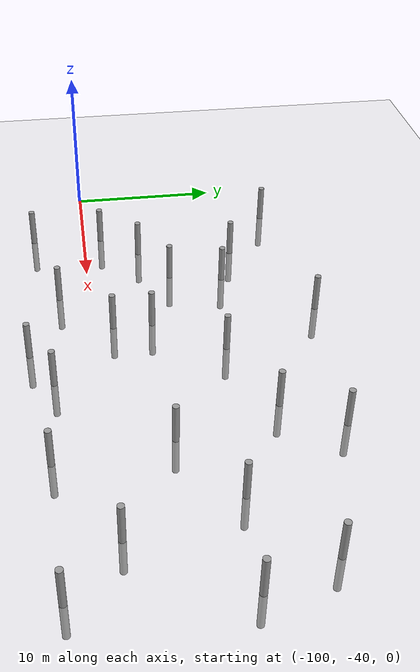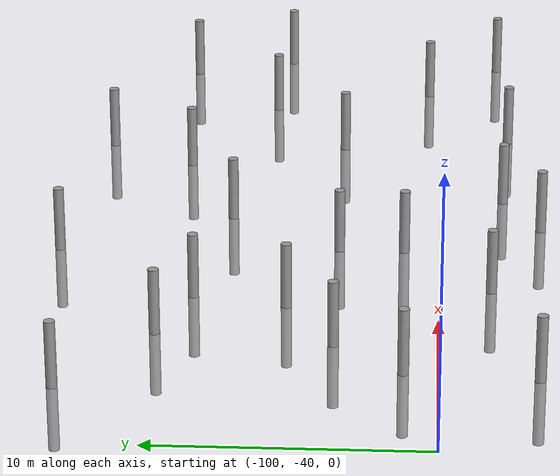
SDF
<sdf version="1.6">
 <world name="default">
  <model name="ground_plane">
   <static>1</static>
   <link name="link">
    <collision name="collision">
     <geometry><plane><normal>0 0 1</normal><size>100 100</size></plane></geometry>
     <surface><friction><ode><mu>100</mu><mu2>50</mu2></ode></friction></surface>
    </collision>
    <visual name="visual">
     <cast_shadows>0</cast_shadows>
     <geometry><plane><normal>0 0 1</normal><size>100 100</size></plane></geometry>
     <material>
      <script><uri>file://media/materials/scripts/gazebo.material</uri><name>Gazebo/Grey</name></script>
     </material>
    </visual>
   </link>
  </model>
  <model name="empty_pillars_7">
   <model name="empty_pillar_clone">
    <link name="link">
     <inertial>
      <mass>1</mass>
      <inertia><ixx>0.145833</ixx><ixy>0</ixy><ixz>0</ixz><iyy>0.145833</iyy><iyz>0</iyz><izz>0.125</izz></inertia>
     </inertial>
     <visual name="visual">
      <geometry><cylinder><radius>0.2</radius><length>5</length></cylinder></geometry>
      <material>
       <script><name>Gazebo/Grey</name><uri>file://media/materials/scripts/gazebo.material</uri></script>
       <shader type="vertex"><normal_map>__default__</normal_map></shader>
       <ambient>0.3 0.3 0.3 1</ambient>
       <diffuse>0.7 0.7 0.7 1</diffuse>
       <specular>0.01 0.01 0.01 1</specular>
       <emissive>0 0 0 1</emissive>
      </material>
     </visual>
     <collision name="collision">
      <geometry><cylinder><radius>0.05</radius><length>5</length></cylinder></geometry>
      <surface>
       <friction>
        <ode><mu>1</mu><mu2>1</mu2><fdir1>0 0 0</fdir1><slip1>0</slip1><slip2>0</slip2></ode>
        <torsional>
         <coefficient>1</coefficient>
         <patch_radius>0</patch_radius>
         <surface_radius>0</surface_radius>
         <use_patch_radius>1</use_patch_radius>
         <ode><slip>0</slip></ode>
        </torsional>
       </friction>
       <bounce><restitution_coefficient>0</restitution_coefficient><threshold>1e+06</threshold></bounce>
       <contact>
        <collide_without_contact>0</collide_without_contact>
        <collide_without_contact_bitmask>1</collide_without_contact_bitmask>
        <collide_bitmask>1</collide_bitmask>
        <ode>
         <soft_cfm>0</soft_cfm>
         <soft_erp>0.2</soft_erp>
         <kp>1e+13</kp>
         <kd>1</kd>
         <max_vel>0.01</max_vel>
         <min_depth>0</min_depth>
        </ode>
        <bullet>
         <split_impulse>1</split_impulse>
         <split_impulse_penetration_threshold>-0.01</split_impulse_penetration_threshold>
         <soft_cfm>0</soft_cfm>
         <soft_erp>0.2</soft_erp>
         <kp>1e+13</kp>
         <kd>1</kd>
        </bullet>
       </contact>
      </surface>
     </collision>
    </link>
    <static>0</static>
    <pose>1.47843 -4.49529 0 0 -0 0</pose>
   </model>
   <model name="empty_pillar_clone_0">
    <link name="link">
     <inertial>
      <mass>1</mass>
      <inertia><ixx>0.145833</ixx><ixy>0</ixy><ixz>0</ixz><iyy>0.145833</iyy><iyz>0</iyz><izz>0.125</izz></inertia>
     </inertial>
     <visual name="visual">
      <geometry><cylinder><radius>0.2</radius><length>5</length></cylinder></geometry>
      <material>
       <script><name>Gazebo/Grey</name><uri>file://media/materials/scripts/gazebo.material</uri></script>
       <shader type="vertex"><normal_map>__default__</normal_map></shader>
       <ambient>0.3 0.3 0.3 1</ambient>
       <diffuse>0.7 0.7 0.7 1</diffuse>
       <specular>0.01 0.01 0.01 1</specular>
       <emissive>0 0 0 1</emissive>
      </material>
     </visual>
     <collision name="collision">
      <geometry><cylinder><radius>0.05</radius><length>5</length></cylinder></geometry>
      <surface>
       <friction>
        <ode><mu>1</mu><mu2>1</mu2><fdir1>0 0 0</fdir1><slip1>0</slip1><slip2>0</slip2></ode>
        <torsional>
         <coefficient>1</coefficient>
         <patch_radius>0</patch_radius>
         <surface_radius>0</surface_radius>
         <use_patch_radius>1</use_patch_radius>
         <ode><slip>0</slip></ode>
        </torsional>
       </friction>
       <bounce><restitution_coefficient>0</restitution_coefficient><threshold>1e+06</threshold></bounce>
       <contact>
        <collide_without_contact>0</collide_without_contact>
        <collide_without_contact_bitmask>1</collide_without_contact_bitmask>
        <collide_bitmask>1</collide_bitmask>
        <ode>
         <soft_cfm>0</soft_cfm>
         <soft_erp>0.2</soft_erp>
         <kp>1e+13</kp>
         <kd>1</kd>
         <max_vel>0.01</max_vel>
         <min_depth>0</min_depth>
        </ode>
        <bullet>
         <split_impulse>1</split_impulse>
         <split_impulse_penetration_threshold>-0.01</split_impulse_penetration_threshold>
         <soft_cfm>0</soft_cfm>
         <soft_erp>0.2</soft_erp>
         <kp>1e+13</kp>
         <kd>1</kd>
        </bullet>
       </contact>
      </surface>
     </collision>
    </link>
    <static>0</static>
    <pose>10.3453 -7.35986 0 0 -0 0</pose>
   </model>
   <model name="empty_pillar_clone_11">
    <link name="link">
     <inertial>
      <mass>1</mass>
      <inertia><ixx>0.145833</ixx><ixy>0</ixy><ixz>0</ixz><iyy>0.145833</iyy><iyz>0</iyz><izz>0.125</izz></inertia>
     </inertial>
     <visual name="visual">
      <geometry><cylinder><radius>0.2</radius><length>5</length></cylinder></geometry>
      <material>
       <script><name>Gazebo/Grey</name><uri>file://media/materials/scripts/gazebo.material</uri></script>
       <shader type="vertex"><normal_map>__default__</normal_map></shader>
       <ambient>0.3 0.3 0.3 1</ambient>
       <diffuse>0.7 0.7 0.7 1</diffuse>
       <specular>0.01 0.01 0.01 1</specular>
       <emissive>0 0 0 1</emissive>
      </material>
     </visual>
     <collision name="collision">
      <geometry><cylinder><radius>0.05</radius><length>5</length></cylinder></geometry>
      <surface>
       <friction>
        <ode><mu>1</mu><mu2>1</mu2><fdir1>0 0 0</fdir1><slip1>0</slip1><slip2>0</slip2></ode>
        <torsional>
         <coefficient>1</coefficient>
         <patch_radius>0</patch_radius>
         <surface_radius>0</surface_radius>
         <use_patch_radius>1</use_patch_radius>
         <ode><slip>0</slip></ode>
        </torsional>
       </friction>
       <bounce><restitution_coefficient>0</restitution_coefficient><threshold>1e+06</threshold></bounce>
       <contact>
        <collide_without_contact>0</collide_without_contact>
        <collide_without_contact_bitmask>1</collide_without_contact_bitmask>
        <collide_bitmask>1</collide_bitmask>
        <ode>
         <soft_cfm>0</soft_cfm>
         <soft_erp>0.2</soft_erp>
         <kp>1e+13</kp>
         <kd>1</kd>
         <max_vel>0.01</max_vel>
         <min_depth>0</min_depth>
        </ode>
        <bullet>
         <split_impulse>1</split_impulse>
         <split_impulse_penetration_threshold>-0.01</split_impulse_penetration_threshold>
         <soft_cfm>0</soft_cfm>
         <soft_erp>0.2</soft_erp>
         <kp>1e+13</kp>
         <kd>1</kd>
        </bullet>
       </contact>
      </surface>
     </collision>
    </link>
    <static>0</static>
    <pose>7.98536 -17.8403 0 0 -0 0</pose>
   </model>
   <model name="empty_pillar_clone_12">
    <link name="link">
     <inertial>
      <mass>1</mass>
      <inertia><ixx>0.145833</ixx><ixy>0</ixy><ixz>0</ixz><iyy>0.145833</iyy><iyz>0</iyz><izz>0.125</izz></inertia>
     </inertial>
     <visual name="visual">
      <geometry><cylinder><radius>0.2</radius><length>5</length></cylinder></geometry>
      <material>
       <script><name>Gazebo/Grey</name><uri>file://media/materials/scripts/gazebo.material</uri></script>
       <shader type="vertex"><normal_map>__default__</normal_map></shader>
       <ambient>0.3 0.3 0.3 1</ambient>
       <diffuse>0.7 0.7 0.7 1</diffuse>
       <specular>0.01 0.01 0.01 1</specular>
       <emissive>0 0 0 1</emissive>
      </material>
     </visual>
     <collision name="collision">
      <geometry><cylinder><radius>0.05</radius><length>5</length></cylinder></geometry>
      <surface>
       <friction>
        <ode><mu>1</mu><mu2>1</mu2><fdir1>0 0 0</fdir1><slip1>0</slip1><slip2>0</slip2></ode>
        <torsional>
         <coefficient>1</coefficient>
         <patch_radius>0</patch_radius>
         <surface_radius>0</surface_radius>
         <use_patch_radius>1</use_patch_radius>
         <ode><slip>0</slip></ode>
        </torsional>
       </friction>
       <bounce><restitution_coefficient>0</restitution_coefficient><threshold>1e+06</threshold></bounce>
       <contact>
        <collide_without_contact>0</collide_without_contact>
        <collide_without_contact_bitmask>1</collide_without_contact_bitmask>
        <collide_bitmask>1</collide_bitmask>
        <ode>
         <soft_cfm>0</soft_cfm>
         <soft_erp>0.2</soft_erp>
         <kp>1e+13</kp>
         <kd>1</kd>
         <max_vel>0.01</max_vel>
         <min_depth>0</min_depth>
        </ode>
        <bullet>
         <split_impulse>1</split_impulse>
         <split_impulse_penetration_threshold>-0.01</split_impulse_penetration_threshold>
         <soft_cfm>0</soft_cfm>
         <soft_erp>0.2</soft_erp>
         <kp>1e+13</kp>
         <kd>1</kd>
        </bullet>
       </contact>
      </surface>
     </collision>
    </link>
    <static>0</static>
    <pose>-4.01464 -20.8403 0 0 -0 0</pose>
   </model>
   <model name="empty_pillar_clone_13">
    <link name="link">
     <inertial>
      <mass>1</mass>
      <inertia><ixx>0.145833</ixx><ixy>0</ixy><ixz>0</ixz><iyy>0.145833</iyy><iyz>0</iyz><izz>0.125</izz></inertia>
     </inertial>
     <visual name="visual">
      <geometry><cylinder><radius>0.2</radius><length>5</length></cylinder></geometry>
      <material>
       <script><name>Gazebo/Grey</name><uri>file://media/materials/scripts/gazebo.material</uri></script>
       <shader type="vertex"><normal_map>__default__</normal_map></shader>
       <ambient>0.3 0.3 0.3 1</ambient>
       <diffuse>0.7 0.7 0.7 1</diffuse>
       <specular>0.01 0.01 0.01 1</specular>
       <emissive>0 0 0 1</emissive>
      </material>
     </visual>
     <collision name="collision">
      <geometry><cylinder><radius>0.05</radius><length>5</length></cylinder></geometry>
      <surface>
       <friction>
        <ode><mu>1</mu><mu2>1</mu2><fdir1>0 0 0</fdir1><slip1>0</slip1><slip2>0</slip2></ode>
        <torsional>
         <coefficient>1</coefficient>
         <patch_radius>0</patch_radius>
         <surface_radius>0</surface_radius>
         <use_patch_radius>1</use_patch_radius>
         <ode><slip>0</slip></ode>
        </torsional>
       </friction>
       <bounce><restitution_coefficient>0</restitution_coefficient><threshold>1e+06</threshold></bounce>
       <contact>
        <collide_without_contact>0</collide_without_contact>
        <collide_without_contact_bitmask>1</collide_without_contact_bitmask>
        <collide_bitmask>1</collide_bitmask>
        <ode>
         <soft_cfm>0</soft_cfm>
         <soft_erp>0.2</soft_erp>
         <kp>1e+13</kp>
         <kd>1</kd>
         <max_vel>0.01</max_vel>
         <min_depth>0</min_depth>
        </ode>
        <bullet>
         <split_impulse>1</split_impulse>
         <split_impulse_penetration_threshold>-0.01</split_impulse_penetration_threshold>
         <soft_cfm>0</soft_cfm>
         <soft_erp>0.2</soft_erp>
         <kp>1e+13</kp>
         <kd>1</kd>
        </bullet>
       </contact>
      </surface>
     </collision>
    </link>
    <static>0</static>
    <pose>-9.01464 -14.4259 0 0 -0 0</pose>
   </model>
   <model name="empty_pillar_clone_15">
    <link name="link">
     <inertial>
      <mass>1</mass>
      <inertia><ixx>0.145833</ixx><ixy>0</ixy><ixz>0</ixz><iyy>0.145833</iyy><iyz>0</iyz><izz>0.125</izz></inertia>
     </inertial>
     <visual name="visual">
      <geometry><cylinder><radius>0.2</radius><length>5</length></cylinder></geometry>
      <material>
       <script><name>Gazebo/Grey</name><uri>file://media/materials/scripts/gazebo.material</uri></script>
       <shader type="vertex"><normal_map>__default__</normal_map></shader>
       <ambient>0.3 0.3 0.3 1</ambient>
       <diffuse>0.7 0.7 0.7 1</diffuse>
       <specular>0.01 0.01 0.01 1</specular>
       <emissive>0 0 0 1</emissive>
      </material>
     </visual>
     <collision name="collision">
      <geometry><cylinder><radius>0.05</radius><length>5</length></cylinder></geometry>
      <surface>
       <friction>
        <ode><mu>1</mu><mu2>1</mu2><fdir1>0 0 0</fdir1><slip1>0</slip1><slip2>0</slip2></ode>
        <torsional>
         <coefficient>1</coefficient>
         <patch_radius>0</patch_radius>
         <surface_radius>0</surface_radius>
         <use_patch_radius>1</use_patch_radius>
         <ode><slip>0</slip></ode>
        </torsional>
       </friction>
       <bounce><restitution_coefficient>0</restitution_coefficient><threshold>1e+06</threshold></bounce>
       <contact>
        <collide_without_contact>0</collide_without_contact>
        <collide_without_contact_bitmask>1</collide_without_contact_bitmask>
        <collide_bitmask>1</collide_bitmask>
        <ode>
         <soft_cfm>0</soft_cfm>
         <soft_erp>0.2</soft_erp>
         <kp>1e+13</kp>
         <kd>1</kd>
         <max_vel>0.01</max_vel>
         <min_depth>0</min_depth>
        </ode>
        <bullet>
         <split_impulse>1</split_impulse>
         <split_impulse_penetration_threshold>-0.01</split_impulse_penetration_threshold>
         <soft_cfm>0</soft_cfm>
         <soft_erp>0.2</soft_erp>
         <kp>1e+13</kp>
         <kd>1</kd>
        </bullet>
       </contact>
      </surface>
     </collision>
    </link>
    <static>0</static>
    <pose>-9.37193 -3.58732 0 0 -0 0</pose>
   </model>
   <model name="empty_pillar_clone_3">
    <link name="link">
     <inertial>
      <mass>1</mass>
      <inertia><ixx>0.145833</ixx><ixy>0</ixy><ixz>0</ixz><iyy>0.145833</iyy><iyz>0</iyz><izz>0.125</izz></inertia>
     </inertial>
     <visual name="visual">
      <geometry><cylinder><radius>0.2</radius><length>5</length></cylinder></geometry>
      <material>
       <script><name>Gazebo/Grey</name><uri>file://media/materials/scripts/gazebo.material</uri></script>
       <shader type="vertex"><normal_map>__default__</normal_map></shader>
       <ambient>0.3 0.3 0.3 1</ambient>
       <diffuse>0.7 0.7 0.7 1</diffuse>
       <specular>0.01 0.01 0.01 1</specular>
       <emissive>0 0 0 1</emissive>
      </material>
     </visual>
     <collision name="collision">
      <geometry><cylinder><radius>0.05</radius><length>5</length></cylinder></geometry>
      <surface>
       <friction>
        <ode><mu>1</mu><mu2>1</mu2><fdir1>0 0 0</fdir1><slip1>0</slip1><slip2>0</slip2></ode>
        <torsional>
         <coefficient>1</coefficient>
         <patch_radius>0</patch_radius>
         <surface_radius>0</surface_radius>
         <use_patch_radius>1</use_patch_radius>
         <ode><slip>0</slip></ode>
        </torsional>
       </friction>
       <bounce><restitution_coefficient>0</restitution_coefficient><threshold>1e+06</threshold></bounce>
       <contact>
        <collide_without_contact>0</collide_without_contact>
        <collide_without_contact_bitmask>1</collide_without_contact_bitmask>
        <collide_bitmask>1</collide_bitmask>
        <ode>
         <soft_cfm>0</soft_cfm>
         <soft_erp>0.2</soft_erp>
         <kp>1e+13</kp>
         <kd>1</kd>
         <max_vel>0.01</max_vel>
         <min_depth>0</min_depth>
        </ode>
        <bullet>
         <split_impulse>1</split_impulse>
         <split_impulse_penetration_threshold>-0.01</split_impulse_penetration_threshold>
         <soft_cfm>0</soft_cfm>
         <soft_erp>0.2</soft_erp>
         <kp>1e+13</kp>
         <kd>1</kd>
        </bullet>
       </contact>
      </surface>
     </collision>
    </link>
    <static>0</static>
    <pose>5.99316 -11.2211 0 0 -0 0</pose>
   </model>
   <model name="empty_pillar_clone_35">
    <link name="link">
     <inertial>
      <mass>1</mass>
      <inertia><ixx>0.145833</ixx><ixy>0</ixy><ixz>0</ixz><iyy>0.145833</iyy><iyz>0</iyz><izz>0.125</izz></inertia>
     </inertial>
     <visual name="visual">
      <geometry><cylinder><radius>0.2</radius><length>5</length></cylinder></geometry>
      <material>
       <script><name>Gazebo/Grey</name><uri>file://media/materials/scripts/gazebo.material</uri></script>
       <shader type="vertex"><normal_map>__default__</normal_map></shader>
       <ambient>0.3 0.3 0.3 1</ambient>
       <diffuse>0.7 0.7 0.7 1</diffuse>
       <specular>0.01 0.01 0.01 1</specular>
       <emissive>0 0 0 1</emissive>
      </material>
     </visual>
     <collision name="collision">
      <geometry><cylinder><radius>0.05</radius><length>5</length></cylinder></geometry>
      <surface>
       <friction>
        <ode><mu>1</mu><mu2>1</mu2><fdir1>0 0 0</fdir1><slip1>0</slip1><slip2>0</slip2></ode>
        <torsional>
         <coefficient>1</coefficient>
         <patch_radius>0</patch_radius>
         <surface_radius>0</surface_radius>
         <use_patch_radius>1</use_patch_radius>
         <ode><slip>0</slip></ode>
        </torsional>
       </friction>
       <bounce><restitution_coefficient>0</restitution_coefficient><threshold>1e+06</threshold></bounce>
       <contact>
        <collide_without_contact>0</collide_without_contact>
        <collide_without_contact_bitmask>1</collide_without_contact_bitmask>
        <collide_bitmask>1</collide_bitmask>
        <ode>
         <soft_cfm>0</soft_cfm>
         <soft_erp>0.2</soft_erp>
         <kp>1e+13</kp>
         <kd>1</kd>
         <max_vel>0.01</max_vel>
         <min_depth>0</min_depth>
        </ode>
        <bullet>
         <split_impulse>1</split_impulse>
         <split_impulse_penetration_threshold>-0.01</split_impulse_penetration_threshold>
         <soft_cfm>0</soft_cfm>
         <soft_erp>0.2</soft_erp>
         <kp>1e+13</kp>
         <kd>1</kd>
        </bullet>
       </contact>
      </surface>
     </collision>
    </link>
    <static>0</static>
    <pose>-19.4431 -17.0281 0 0 -0 0</pose>
   </model>
   <model name="empty_pillar_clone_36">
    <link name="link">
     <inertial>
      <mass>1</mass>
      <inertia><ixx>0.145833</ixx><ixy>0</ixy><ixz>0</ixz><iyy>0.145833</iyy><iyz>0</iyz><izz>0.125</izz></inertia>
     </inertial>
     <visual name="visual">
      <geometry><cylinder><radius>0.2</radius><length>5</length></cylinder></geometry>
      <material>
       <script><name>Gazebo/Grey</name><uri>file://media/materials/scripts/gazebo.material</uri></script>
       <shader type="vertex"><normal_map>__default__</normal_map></shader>
       <ambient>0.3 0.3 0.3 1</ambient>
       <diffuse>0.7 0.7 0.7 1</diffuse>
       <specular>0.01 0.01 0.01 1</specular>
       <emissive>0 0 0 1</emissive>
      </material>
     </visual>
     <collision name="collision">
      <geometry><cylinder><radius>0.05</radius><length>5</length></cylinder></geometry>
      <surface>
       <friction>
        <ode><mu>1</mu><mu2>1</mu2><fdir1>0 0 0</fdir1><slip1>0</slip1><slip2>0</slip2></ode>
        <torsional>
         <coefficient>1</coefficient>
         <patch_radius>0</patch_radius>
         <surface_radius>0</surface_radius>
         <use_patch_radius>1</use_patch_radius>
         <ode><slip>0</slip></ode>
        </torsional>
       </friction>
       <bounce><restitution_coefficient>0</restitution_coefficient><threshold>1e+06</threshold></bounce>
       <contact>
        <collide_without_contact>0</collide_without_contact>
        <collide_without_contact_bitmask>1</collide_without_contact_bitmask>
        <collide_bitmask>1</collide_bitmask>
        <ode>
         <soft_cfm>0</soft_cfm>
         <soft_erp>0.2</soft_erp>
         <kp>1e+13</kp>
         <kd>1</kd>
         <max_vel>0.01</max_vel>
         <min_depth>0</min_depth>
        </ode>
        <bullet>
         <split_impulse>1</split_impulse>
         <split_impulse_penetration_threshold>-0.01</split_impulse_penetration_threshold>
         <soft_cfm>0</soft_cfm>
         <soft_erp>0.2</soft_erp>
         <kp>1e+13</kp>
         <kd>1</kd>
        </bullet>
       </contact>
      </surface>
     </collision>
    </link>
    <static>0</static>
    <pose>-21.0146 -4.84034 0 0 -0 0</pose>
   </model>
   <model name="empty_pillar_clone_37">
    <link name="link">
     <inertial>
      <mass>1</mass>
      <inertia><ixx>0.145833</ixx><ixy>0</ixy><ixz>0</ixz><iyy>0.145833</iyy><iyz>0</iyz><izz>0.125</izz></inertia>
     </inertial>
     <visual name="visual">
      <geometry><cylinder><radius>0.2</radius><length>5</length></cylinder></geometry>
      <material>
       <script><name>Gazebo/Grey</name><uri>file://media/materials/scripts/gazebo.material</uri></script>
       <shader type="vertex"><normal_map>__default__</normal_map></shader>
       <ambient>0.3 0.3 0.3 1</ambient>
       <diffuse>0.7 0.7 0.7 1</diffuse>
       <specular>0.01 0.01 0.01 1</specular>
       <emissive>0 0 0 1</emissive>
      </material>
     </visual>
     <collision name="collision">
      <geometry><cylinder><radius>0.05</radius><length>5</length></cylinder></geometry>
      <surface>
       <friction>
        <ode><mu>1</mu><mu2>1</mu2><fdir1>0 0 0</fdir1><slip1>0</slip1><slip2>0</slip2></ode>
        <torsional>
         <coefficient>1</coefficient>
         <patch_radius>0</patch_radius>
         <surface_radius>0</surface_radius>
         <use_patch_radius>1</use_patch_radius>
         <ode><slip>0</slip></ode>
        </torsional>
       </friction>
       <bounce><restitution_coefficient>0</restitution_coefficient><threshold>1e+06</threshold></bounce>
       <contact>
        <collide_without_contact>0</collide_without_contact>
        <collide_without_contact_bitmask>1</collide_without_contact_bitmask>
        <collide_bitmask>1</collide_bitmask>
        <ode>
         <soft_cfm>0</soft_cfm>
         <soft_erp>0.2</soft_erp>
         <kp>1e+13</kp>
         <kd>1</kd>
         <max_vel>0.01</max_vel>
         <min_depth>0</min_depth>
        </ode>
        <bullet>
         <split_impulse>1</split_impulse>
         <split_impulse_penetration_threshold>-0.01</split_impulse_penetration_threshold>
         <soft_cfm>0</soft_cfm>
         <soft_erp>0.2</soft_erp>
         <kp>1e+13</kp>
         <kd>1</kd>
        </bullet>
       </contact>
      </surface>
     </collision>
    </link>
    <static>0</static>
    <pose>-16.6035 -7.98282 0 0 -0 0</pose>
   </model>
   <model name="empty_pillar_clone_39">
    <link name="link">
     <inertial>
      <mass>1</mass>
      <inertia><ixx>0.145833</ixx><ixy>0</ixy><ixz>0</ixz><iyy>0.145833</iyy><iyz>0</iyz><izz>0.125</izz></inertia>
     </inertial>
     <visual name="visual">
      <geometry><cylinder><radius>0.2</radius><length>5</length></cylinder></geometry>
      <material>
       <script><name>Gazebo/Grey</name><uri>file://media/materials/scripts/gazebo.material</uri></script>
       <shader type="vertex"><normal_map>__default__</normal_map></shader>
       <ambient>0.3 0.3 0.3 1</ambient>
       <diffuse>0.7 0.7 0.7 1</diffuse>
       <specular>0.01 0.01 0.01 1</specular>
       <emissive>0 0 0 1</emissive>
      </material>
     </visual>
     <collision name="collision">
      <geometry><cylinder><radius>0.05</radius><length>5</length></cylinder></geometry>
      <surface>
       <friction>
        <ode><mu>1</mu><mu2>1</mu2><fdir1>0 0 0</fdir1><slip1>0</slip1><slip2>0</slip2></ode>
        <torsional>
         <coefficient>1</coefficient>
         <patch_radius>0</patch_radius>
         <surface_radius>0</surface_radius>
         <use_patch_radius>1</use_patch_radius>
         <ode><slip>0</slip></ode>
        </torsional>
       </friction>
       <bounce><restitution_coefficient>0</restitution_coefficient><threshold>1e+06</threshold></bounce>
       <contact>
        <collide_without_contact>0</collide_without_contact>
        <collide_without_contact_bitmask>1</collide_without_contact_bitmask>
        <collide_bitmask>1</collide_bitmask>
        <ode>
         <soft_cfm>0</soft_cfm>
         <soft_erp>0.2</soft_erp>
         <kp>1e+13</kp>
         <kd>1</kd>
         <max_vel>0.01</max_vel>
         <min_depth>0</min_depth>
        </ode>
        <bullet>
         <split_impulse>1</split_impulse>
         <split_impulse_penetration_threshold>-0.01</split_impulse_penetration_threshold>
         <soft_cfm>0</soft_cfm>
         <soft_erp>0.2</soft_erp>
         <kp>1e+13</kp>
         <kd>1</kd>
        </bullet>
       </contact>
      </surface>
     </collision>
    </link>
    <static>0</static>
    <pose>-13.4361 -9.12638 0 0 -0 0</pose>
   </model>
   <model name="empty_pillar_clone_4">
    <link name="link">
     <inertial>
      <mass>1</mass>
      <inertia><ixx>0.145833</ixx><ixy>0</ixy><ixz>0</ixz><iyy>0.145833</iyy><iyz>0</iyz><izz>0.125</izz></inertia>
     </inertial>
     <visual name="visual">
      <geometry><cylinder><radius>0.2</radius><length>5</length></cylinder></geometry>
      <material>
       <script><name>Gazebo/Grey</name><uri>file://media/materials/scripts/gazebo.material</uri></script>
       <shader type="vertex"><normal_map>__default__</normal_map></shader>
       <ambient>0.3 0.3 0.3 1</ambient>
       <diffuse>0.7 0.7 0.7 1</diffuse>
       <specular>0.01 0.01 0.01 1</specular>
       <emissive>0 0 0 1</emissive>
      </material>
     </visual>
     <collision name="collision">
      <geometry><cylinder><radius>0.05</radius><length>5</length></cylinder></geometry>
      <surface>
       <friction>
        <ode><mu>1</mu><mu2>1</mu2><fdir1>0 0 0</fdir1><slip1>0</slip1><slip2>0</slip2></ode>
        <torsional>
         <coefficient>1</coefficient>
         <patch_radius>0</patch_radius>
         <surface_radius>0</surface_radius>
         <use_patch_radius>1</use_patch_radius>
         <ode><slip>0</slip></ode>
        </torsional>
       </friction>
       <bounce><restitution_coefficient>0</restitution_coefficient><threshold>1e+06</threshold></bounce>
       <contact>
        <collide_without_contact>0</collide_without_contact>
        <collide_without_contact_bitmask>1</collide_without_contact_bitmask>
        <collide_bitmask>1</collide_bitmask>
        <ode>
         <soft_cfm>0</soft_cfm>
         <soft_erp>0.2</soft_erp>
         <kp>1e+13</kp>
         <kd>1</kd>
         <max_vel>0.01</max_vel>
         <min_depth>0</min_depth>
        </ode>
        <bullet>
         <split_impulse>1</split_impulse>
         <split_impulse_penetration_threshold>-0.01</split_impulse_penetration_threshold>
         <soft_cfm>0</soft_cfm>
         <soft_erp>0.2</soft_erp>
         <kp>1e+13</kp>
         <kd>1</kd>
        </bullet>
       </contact>
      </surface>
     </collision>
    </link>
    <static>0</static>
    <pose>1.48428 -14.2998 0 0 -0 0</pose>
   </model>
   <model name="empty_pillar_clone_40">
    <link name="link">
     <inertial>
      <mass>1</mass>
      <inertia><ixx>0.145833</ixx><ixy>0</ixy><ixz>0</ixz><iyy>0.145833</iyy><iyz>0</iyz><izz>0.125</izz></inertia>
     </inertial>
     <visual name="visual">
      <geometry><cylinder><radius>0.2</radius><length>5</length></cylinder></geometry>
      <material>
       <script><name>Gazebo/Grey</name><uri>file://media/materials/scripts/gazebo.material</uri></script>
       <shader type="vertex"><normal_map>__default__</normal_map></shader>
       <ambient>0.3 0.3 0.3 1</ambient>
       <diffuse>0.7 0.7 0.7 1</diffuse>
       <specular>0.01 0.01 0.01 1</specular>
       <emissive>0 0 0 1</emissive>
      </material>
     </visual>
     <collision name="collision">
      <geometry><cylinder><radius>0.05</radius><length>5</length></cylinder></geometry>
      <surface>
       <friction>
        <ode><mu>1</mu><mu2>1</mu2><fdir1>0 0 0</fdir1><slip1>0</slip1><slip2>0</slip2></ode>
        <torsional>
         <coefficient>1</coefficient>
         <patch_radius>0</patch_radius>
         <surface_radius>0</surface_radius>
         <use_patch_radius>1</use_patch_radius>
         <ode><slip>0</slip></ode>
        </torsional>
       </friction>
       <bounce><restitution_coefficient>0</restitution_coefficient><threshold>1e+06</threshold></bounce>
       <contact>
        <collide_without_contact>0</collide_without_contact>
        <collide_without_contact_bitmask>1</collide_without_contact_bitmask>
        <collide_bitmask>1</collide_bitmask>
        <ode>
         <soft_cfm>0</soft_cfm>
         <soft_erp>0.2</soft_erp>
         <kp>1e+13</kp>
         <kd>1</kd>
         <max_vel>0.01</max_vel>
         <min_depth>0</min_depth>
        </ode>
        <bullet>
         <split_impulse>1</split_impulse>
         <split_impulse_penetration_threshold>-0.01</split_impulse_penetration_threshold>
         <soft_cfm>0</soft_cfm>
         <soft_erp>0.2</soft_erp>
         <kp>1e+13</kp>
         <kd>1</kd>
        </bullet>
       </contact>
      </surface>
     </collision>
    </link>
    <static>0</static>
    <pose>-17.318 -14.4851 0 0 -0 0</pose>
   </model>
   <model name="empty_pillar_clone_41">
    <link name="link">
     <inertial>
      <mass>1</mass>
      <inertia><ixx>0.145833</ixx><ixy>0</ixy><ixz>0</ixz><iyy>0.145833</iyy><iyz>0</iyz><izz>0.125</izz></inertia>
     </inertial>
     <visual name="visual">
      <geometry><cylinder><radius>0.2</radius><length>5</length></cylinder></geometry>
      <material>
       <script><name>Gazebo/Grey</name><uri>file://media/materials/scripts/gazebo.material</uri></script>
       <shader type="vertex"><normal_map>__default__</normal_map></shader>
       <ambient>0.3 0.3 0.3 1</ambient>
       <diffuse>0.7 0.7 0.7 1</diffuse>
       <specular>0.01 0.01 0.01 1</specular>
       <emissive>0 0 0 1</emissive>
      </material>
     </visual>
     <collision name="collision">
      <geometry><cylinder><radius>0.05</radius><length>5</length></cylinder></geometry>
      <surface>
       <friction>
        <ode><mu>1</mu><mu2>1</mu2><fdir1>0 0 0</fdir1><slip1>0</slip1><slip2>0</slip2></ode>
        <torsional>
         <coefficient>1</coefficient>
         <patch_radius>0</patch_radius>
         <surface_radius>0</surface_radius>
         <use_patch_radius>1</use_patch_radius>
         <ode><slip>0</slip></ode>
        </torsional>
       </friction>
       <bounce><restitution_coefficient>0</restitution_coefficient><threshold>1e+06</threshold></bounce>
       <contact>
        <collide_without_contact>0</collide_without_contact>
        <collide_without_contact_bitmask>1</collide_without_contact_bitmask>
        <collide_bitmask>1</collide_bitmask>
        <ode>
         <soft_cfm>0</soft_cfm>
         <soft_erp>0.2</soft_erp>
         <kp>1e+13</kp>
         <kd>1</kd>
         <max_vel>0.01</max_vel>
         <min_depth>0</min_depth>
        </ode>
        <bullet>
         <split_impulse>1</split_impulse>
         <split_impulse_penetration_threshold>-0.01</split_impulse_penetration_threshold>
         <soft_cfm>0</soft_cfm>
         <soft_erp>0.2</soft_erp>
         <kp>1e+13</kp>
         <kd>1</kd>
        </bullet>
       </contact>
      </surface>
     </collision>
    </link>
    <static>0</static>
    <pose>-14.1448 -12.6326 0 0 -0 0</pose>
   </model>
   <model name="empty_pillar_clone_42">
    <link name="link">
     <inertial>
      <mass>1</mass>
      <inertia><ixx>0.145833</ixx><ixy>0</ixy><ixz>0</ixz><iyy>0.145833</iyy><iyz>0</iyz><izz>0.125</izz></inertia>
     </inertial>
     <visual name="visual">
      <geometry><cylinder><radius>0.2</radius><length>5</length></cylinder></geometry>
      <material>
       <script><name>Gazebo/Grey</name><uri>file://media/materials/scripts/gazebo.material</uri></script>
       <shader type="vertex"><normal_map>__default__</normal_map></shader>
       <ambient>0.3 0.3 0.3 1</ambient>
       <diffuse>0.7 0.7 0.7 1</diffuse>
       <specular>0.01 0.01 0.01 1</specular>
       <emissive>0 0 0 1</emissive>
      </material>
     </visual>
     <collision name="collision">
      <geometry><cylinder><radius>0.05</radius><length>5</length></cylinder></geometry>
      <surface>
       <friction>
        <ode><mu>1</mu><mu2>1</mu2><fdir1>0 0 0</fdir1><slip1>0</slip1><slip2>0</slip2></ode>
        <torsional>
         <coefficient>1</coefficient>
         <patch_radius>0</patch_radius>
         <surface_radius>0</surface_radius>
         <use_patch_radius>1</use_patch_radius>
         <ode><slip>0</slip></ode>
        </torsional>
       </friction>
       <bounce><restitution_coefficient>0</restitution_coefficient><threshold>1e+06</threshold></bounce>
       <contact>
        <collide_without_contact>0</collide_without_contact>
        <collide_without_contact_bitmask>1</collide_without_contact_bitmask>
        <collide_bitmask>1</collide_bitmask>
        <ode>
         <soft_cfm>0</soft_cfm>
         <soft_erp>0.2</soft_erp>
         <kp>1e+13</kp>
         <kd>1</kd>
         <max_vel>0.01</max_vel>
         <min_depth>0</min_depth>
        </ode>
        <bullet>
         <split_impulse>1</split_impulse>
         <split_impulse_penetration_threshold>-0.01</split_impulse_penetration_threshold>
         <soft_cfm>0</soft_cfm>
         <soft_erp>0.2</soft_erp>
         <kp>1e+13</kp>
         <kd>1</kd>
        </bullet>
       </contact>
      </surface>
     </collision>
    </link>
    <static>0</static>
    <pose>-12.5409 -20.2416 0 0 -0 0</pose>
   </model>
   <model name="empty_pillar_clone_43">
    <link name="link">
     <inertial>
      <mass>1</mass>
      <inertia><ixx>0.145833</ixx><ixy>0</ixy><ixz>0</ixz><iyy>0.145833</iyy><iyz>0</iyz><izz>0.125</izz></inertia>
     </inertial>
     <visual name="visual">
      <geometry><cylinder><radius>0.2</radius><length>5</length></cylinder></geometry>
      <material>
       <script><name>Gazebo/Grey</name><uri>file://media/materials/scripts/gazebo.material</uri></script>
       <shader type="vertex"><normal_map>__default__</normal_map></shader>
       <ambient>0.3 0.3 0.3 1</ambient>
       <diffuse>0.7 0.7 0.7 1</diffuse>
       <specular>0.01 0.01 0.01 1</specular>
       <emissive>0 0 0 1</emissive>
      </material>
     </visual>
     <collision name="collision">
      <geometry><cylinder><radius>0.05</radius><length>5</length></cylinder></geometry>
      <surface>
       <friction>
        <ode><mu>1</mu><mu2>1</mu2><fdir1>0 0 0</fdir1><slip1>0</slip1><slip2>0</slip2></ode>
        <torsional>
         <coefficient>1</coefficient>
         <patch_radius>0</patch_radius>
         <surface_radius>0</surface_radius>
         <use_patch_radius>1</use_patch_radius>
         <ode><slip>0</slip></ode>
        </torsional>
       </friction>
       <bounce><restitution_coefficient>0</restitution_coefficient><threshold>1e+06</threshold></bounce>
       <contact>
        <collide_without_contact>0</collide_without_contact>
        <collide_without_contact_bitmask>1</collide_without_contact_bitmask>
        <collide_bitmask>1</collide_bitmask>
        <ode>
         <soft_cfm>0</soft_cfm>
         <soft_erp>0.2</soft_erp>
         <kp>1e+13</kp>
         <kd>1</kd>
         <max_vel>0.01</max_vel>
         <min_depth>0</min_depth>
        </ode>
        <bullet>
         <split_impulse>1</split_impulse>
         <split_impulse_penetration_threshold>-0.01</split_impulse_penetration_threshold>
         <soft_cfm>0</soft_cfm>
         <soft_erp>0.2</soft_erp>
         <kp>1e+13</kp>
         <kd>1</kd>
        </bullet>
       </contact>
      </surface>
     </collision>
    </link>
    <static>0</static>
    <pose>-19.7613 -21.8307 0 0 -0 0</pose>
   </model>
   <model name="empty_pillar_clone_44">
    <link name="link">
     <inertial>
      <mass>1</mass>
      <inertia><ixx>0.145833</ixx><ixy>0</ixy><ixz>0</ixz><iyy>0.145833</iyy><iyz>0</iyz><izz>0.125</izz></inertia>
     </inertial>
     <visual name="visual">
      <geometry><cylinder><radius>0.2</radius><length>5</length></cylinder></geometry>
      <material>
       <script><name>Gazebo/Grey</name><uri>file://media/materials/scripts/gazebo.material</uri></script>
       <shader type="vertex"><normal_map>__default__</normal_map></shader>
       <ambient>0.3 0.3 0.3 1</ambient>
       <diffuse>0.7 0.7 0.7 1</diffuse>
       <specular>0.01 0.01 0.01 1</specular>
       <emissive>0 0 0 1</emissive>
      </material>
     </visual>
     <collision name="collision">
      <geometry><cylinder><radius>0.05</radius><length>5</length></cylinder></geometry>
      <surface>
       <friction>
        <ode><mu>1</mu><mu2>1</mu2><fdir1>0 0 0</fdir1><slip1>0</slip1><slip2>0</slip2></ode>
        <torsional>
         <coefficient>1</coefficient>
         <patch_radius>0</patch_radius>
         <surface_radius>0</surface_radius>
         <use_patch_radius>1</use_patch_radius>
         <ode><slip>0</slip></ode>
        </torsional>
       </friction>
       <bounce><restitution_coefficient>0</restitution_coefficient><threshold>1e+06</threshold></bounce>
       <contact>
        <collide_without_contact>0</collide_without_contact>
        <collide_without_contact_bitmask>1</collide_without_contact_bitmask>
        <collide_bitmask>1</collide_bitmask>
        <ode>
         <soft_cfm>0</soft_cfm>
         <soft_erp>0.2</soft_erp>
         <kp>1e+13</kp>
         <kd>1</kd>
         <max_vel>0.01</max_vel>
         <min_depth>0</min_depth>
        </ode>
        <bullet>
         <split_impulse>1</split_impulse>
         <split_impulse_penetration_threshold>-0.01</split_impulse_penetration_threshold>
         <soft_cfm>0</soft_cfm>
         <soft_erp>0.2</soft_erp>
         <kp>1e+13</kp>
         <kd>1</kd>
        </bullet>
       </contact>
      </surface>
     </collision>
    </link>
    <static>0</static>
    <pose>-6.78285 -22.2729 0 0 -0 0</pose>
   </model>
   <model name="empty_pillar_clone_45">
    <link name="link">
     <inertial>
      <mass>1</mass>
      <inertia><ixx>0.145833</ixx><ixy>0</ixy><ixz>0</ixz><iyy>0.145833</iyy><iyz>0</iyz><izz>0.125</izz></inertia>
     </inertial>
     <visual name="visual">
      <geometry><cylinder><radius>0.2</radius><length>5</length></cylinder></geometry>
      <material>
       <script><name>Gazebo/Grey</name><uri>file://media/materials/scripts/gazebo.material</uri></script>
       <shader type="vertex"><normal_map>__default__</normal_map></shader>
       <ambient>0.3 0.3 0.3 1</ambient>
       <diffuse>0.7 0.7 0.7 1</diffuse>
       <specular>0.01 0.01 0.01 1</specular>
       <emissive>0 0 0 1</emissive>
      </material>
     </visual>
     <collision name="collision">
      <geometry><cylinder><radius>0.05</radius><length>5</length></cylinder></geometry>
      <surface>
       <friction>
        <ode><mu>1</mu><mu2>1</mu2><fdir1>0 0 0</fdir1><slip1>0</slip1><slip2>0</slip2></ode>
        <torsional>
         <coefficient>1</coefficient>
         <patch_radius>0</patch_radius>
         <surface_radius>0</surface_radius>
         <use_patch_radius>1</use_patch_radius>
         <ode><slip>0</slip></ode>
        </torsional>
       </friction>
       <bounce><restitution_coefficient>0</restitution_coefficient><threshold>1e+06</threshold></bounce>
       <contact>
        <collide_without_contact>0</collide_without_contact>
        <collide_without_contact_bitmask>1</collide_without_contact_bitmask>
        <collide_bitmask>1</collide_bitmask>
        <ode>
         <soft_cfm>0</soft_cfm>
         <soft_erp>0.2</soft_erp>
         <kp>1e+13</kp>
         <kd>1</kd>
         <max_vel>0.01</max_vel>
         <min_depth>0</min_depth>
        </ode>
        <bullet>
         <split_impulse>1</split_impulse>
         <split_impulse_penetration_threshold>-0.01</split_impulse_penetration_threshold>
         <soft_cfm>0</soft_cfm>
         <soft_erp>0.2</soft_erp>
         <kp>1e+13</kp>
         <kd>1</kd>
        </bullet>
       </contact>
      </surface>
     </collision>
    </link>
    <static>0</static>
    <pose>-9.01076 -16.9307 0 0 -0 0</pose>
   </model>
   <model name="empty_pillar_clone_46">
    <link name="link">
     <inertial>
      <mass>1</mass>
      <inertia><ixx>0.145833</ixx><ixy>0</ixy><ixz>0</ixz><iyy>0.145833</iyy><iyz>0</iyz><izz>0.125</izz></inertia>
     </inertial>
     <visual name="visual">
      <geometry><cylinder><radius>0.2</radius><length>5</length></cylinder></geometry>
      <material>
       <script><name>Gazebo/Grey</name><uri>file://media/materials/scripts/gazebo.material</uri></script>
       <shader type="vertex"><normal_map>__default__</normal_map></shader>
       <ambient>0.3 0.3 0.3 1</ambient>
       <diffuse>0.7 0.7 0.7 1</diffuse>
       <specular>0.01 0.01 0.01 1</specular>
       <emissive>0 0 0 1</emissive>
      </material>
     </visual>
     <collision name="collision">
      <geometry><cylinder><radius>0.05</radius><length>5</length></cylinder></geometry>
      <surface>
       <friction>
        <ode><mu>1</mu><mu2>1</mu2><fdir1>0 0 0</fdir1><slip1>0</slip1><slip2>0</slip2></ode>
        <torsional>
         <coefficient>1</coefficient>
         <patch_radius>0</patch_radius>
         <surface_radius>0</surface_radius>
         <use_patch_radius>1</use_patch_radius>
         <ode><slip>0</slip></ode>
        </torsional>
       </friction>
       <bounce><restitution_coefficient>0</restitution_coefficient><threshold>1e+06</threshold></bounce>
       <contact>
        <collide_without_contact>0</collide_without_contact>
        <collide_without_contact_bitmask>1</collide_without_contact_bitmask>
        <collide_bitmask>1</collide_bitmask>
        <ode>
         <soft_cfm>0</soft_cfm>
         <soft_erp>0.2</soft_erp>
         <kp>1e+13</kp>
         <kd>1</kd>
         <max_vel>0.01</max_vel>
         <min_depth>0</min_depth>
        </ode>
        <bullet>
         <split_impulse>1</split_impulse>
         <split_impulse_penetration_threshold>-0.01</split_impulse_penetration_threshold>
         <soft_cfm>0</soft_cfm>
         <soft_erp>0.2</soft_erp>
         <kp>1e+13</kp>
         <kd>1</kd>
        </bullet>
       </contact>
      </surface>
     </collision>
    </link>
    <static>0</static>
    <pose>2.45033 -21.185 0 0 -0 0</pose>
   </model>
   <model name="empty_pillar_clone_47">
    <link name="link">
     <inertial>
      <mass>1</mass>
      <inertia><ixx>0.145833</ixx><ixy>0</ixy><ixz>0</ixz><iyy>0.145833</iyy><iyz>0</iyz><izz>0.125</izz></inertia>
     </inertial>
     <visual name="visual">
      <geometry><cylinder><radius>0.2</radius><length>5</length></cylinder></geometry>
      <material>
       <script><name>Gazebo/Grey</name><uri>file://media/materials/scripts/gazebo.material</uri></script>
       <shader type="vertex"><normal_map>__default__</normal_map></shader>
       <ambient>0.3 0.3 0.3 1</ambient>
       <diffuse>0.7 0.7 0.7 1</diffuse>
       <specular>0.01 0.01 0.01 1</specular>
       <emissive>0 0 0 1</emissive>
      </material>
     </visual>
     <collision name="collision">
      <geometry><cylinder><radius>0.05</radius><length>5</length></cylinder></geometry>
      <surface>
       <friction>
        <ode><mu>1</mu><mu2>1</mu2><fdir1>0 0 0</fdir1><slip1>0</slip1><slip2>0</slip2></ode>
        <torsional>
         <coefficient>1</coefficient>
         <patch_radius>0</patch_radius>
         <surface_radius>0</surface_radius>
         <use_patch_radius>1</use_patch_radius>
         <ode><slip>0</slip></ode>
        </torsional>
       </friction>
       <bounce><restitution_coefficient>0</restitution_coefficient><threshold>1e+06</threshold></bounce>
       <contact>
        <collide_without_contact>0</collide_without_contact>
        <collide_without_contact_bitmask>1</collide_without_contact_bitmask>
        <collide_bitmask>1</collide_bitmask>
        <ode>
         <soft_cfm>0</soft_cfm>
         <soft_erp>0.2</soft_erp>
         <kp>1e+13</kp>
         <kd>1</kd>
         <max_vel>0.01</max_vel>
         <min_depth>0</min_depth>
        </ode>
        <bullet>
         <split_impulse>1</split_impulse>
         <split_impulse_penetration_threshold>-0.01</split_impulse_penetration_threshold>
         <soft_cfm>0</soft_cfm>
         <soft_erp>0.2</soft_erp>
         <kp>1e+13</kp>
         <kd>1</kd>
        </bullet>
       </contact>
      </surface>
     </collision>
    </link>
    <static>0</static>
    <pose>-0.569433 -7.97346 0 0 -0 0</pose>
   </model>
   <model name="empty_pillar_clone_5">
    <link name="link">
     <inertial>
      <mass>1</mass>
      <inertia><ixx>0.145833</ixx><ixy>0</ixy><ixz>0</ixz><iyy>0.145833</iyy><iyz>0</iyz><izz>0.125</izz></inertia>
     </inertial>
     <visual name="visual">
      <geometry><cylinder><radius>0.2</radius><length>5</length></cylinder></geometry>
      <material>
       <script><name>Gazebo/Grey</name><uri>file://media/materials/scripts/gazebo.material</uri></script>
       <shader type="vertex"><normal_map>__default__</normal_map></shader>
       <ambient>0.3 0.3 0.3 1</ambient>
       <diffuse>0.7 0.7 0.7 1</diffuse>
       <specular>0.01 0.01 0.01 1</specular>
       <emissive>0 0 0 1</emissive>
      </material>
     </visual>
     <collision name="collision">
      <geometry><cylinder><radius>0.05</radius><length>5</length></cylinder></geometry>
      <surface>
       <friction>
        <ode><mu>1</mu><mu2>1</mu2><fdir1>0 0 0</fdir1><slip1>0</slip1><slip2>0</slip2></ode>
        <torsional>
         <coefficient>1</coefficient>
         <patch_radius>0</patch_radius>
         <surface_radius>0</surface_radius>
         <use_patch_radius>1</use_patch_radius>
         <ode><slip>0</slip></ode>
        </torsional>
       </friction>
       <bounce><restitution_coefficient>0</restitution_coefficient><threshold>1e+06</threshold></bounce>
       <contact>
        <collide_without_contact>0</collide_without_contact>
        <collide_without_contact_bitmask>1</collide_without_contact_bitmask>
        <collide_bitmask>1</collide_bitmask>
        <ode>
         <soft_cfm>0</soft_cfm>
         <soft_erp>0.2</soft_erp>
         <kp>1e+13</kp>
         <kd>1</kd>
         <max_vel>0.01</max_vel>
         <min_depth>0</min_depth>
        </ode>
        <bullet>
         <split_impulse>1</split_impulse>
         <split_impulse_penetration_threshold>-0.01</split_impulse_penetration_threshold>
         <soft_cfm>0</soft_cfm>
         <soft_erp>0.2</soft_erp>
         <kp>1e+13</kp>
         <kd>1</kd>
        </bullet>
       </contact>
      </surface>
     </collision>
    </link>
    <static>0</static>
    <pose>-6.03595 -10.0932 0 0 -0 0</pose>
   </model>
   <model name="empty_pillar_clone_51">
    <link name="link">
     <inertial>
      <mass>1</mass>
      <inertia><ixx>0.145833</ixx><ixy>0</ixy><ixz>0</ixz><iyy>0.145833</iyy><iyz>0</iyz><izz>0.125</izz></inertia>
     </inertial>
     <visual name="visual">
      <geometry><cylinder><radius>0.2</radius><length>5</length></cylinder></geometry>
      <material>
       <script><name>Gazebo/Grey</name><uri>file://media/materials/scripts/gazebo.material</uri></script>
       <shader type="vertex"><normal_map>__default__</normal_map></shader>
       <ambient>0.3 0.3 0.3 1</ambient>
       <diffuse>0.7 0.7 0.7 1</diffuse>
       <specular>0.01 0.01 0.01 1</specular>
       <emissive>0 0 0 1</emissive>
      </material>
     </visual>
     <collision name="collision">
      <geometry><cylinder><radius>0.05</radius><length>5</length></cylinder></geometry>
      <surface>
       <friction>
        <ode><mu>1</mu><mu2>1</mu2><fdir1>0 0 0</fdir1><slip1>0</slip1><slip2>0</slip2></ode>
        <torsional>
         <coefficient>1</coefficient>
         <patch_radius>0</patch_radius>
         <surface_radius>0</surface_radius>
         <use_patch_radius>1</use_patch_radius>
         <ode><slip>0</slip></ode>
        </torsional>
       </friction>
       <bounce><restitution_coefficient>0</restitution_coefficient><threshold>1e+06</threshold></bounce>
       <contact>
        <collide_without_contact>0</collide_without_contact>
        <collide_without_contact_bitmask>1</collide_without_contact_bitmask>
        <collide_bitmask>1</collide_bitmask>
        <ode>
         <soft_cfm>0</soft_cfm>
         <soft_erp>0.2</soft_erp>
         <kp>1e+13</kp>
         <kd>1</kd>
         <max_vel>0.01</max_vel>
         <min_depth>0</min_depth>
        </ode>
        <bullet>
         <split_impulse>1</split_impulse>
         <split_impulse_penetration_threshold>-0.01</split_impulse_penetration_threshold>
         <soft_cfm>0</soft_cfm>
         <soft_erp>0.2</soft_erp>
         <kp>1e+13</kp>
         <kd>1</kd>
        </bullet>
       </contact>
      </surface>
     </collision>
    </link>
    <static>0</static>
    <pose>11.8943 -11.5792 0 0 -0 0</pose>
   </model>
   <model name="empty_pillar_clone_52">
    <link name="link">
     <inertial>
      <mass>1</mass>
      <inertia><ixx>0.145833</ixx><ixy>0</ixy><ixz>0</ixz><iyy>0.145833</iyy><iyz>0</iyz><izz>0.125</izz></inertia>
     </inertial>
     <visual name="visual">
      <geometry><cylinder><radius>0.2</radius><length>5</length></cylinder></geometry>
      <material>
       <script><name>Gazebo/Grey</name><uri>file://media/materials/scripts/gazebo.material</uri></script>
       <shader type="vertex"><normal_map>__default__</normal_map></shader>
       <ambient>0.3 0.3 0.3 1</ambient>
       <diffuse>0.7 0.7 0.7 1</diffuse>
       <specular>0.01 0.01 0.01 1</specular>
       <emissive>0 0 0 1</emissive>
      </material>
     </visual>
     <collision name="collision">
      <geometry><cylinder><radius>0.05</radius><length>5</length></cylinder></geometry>
      <surface>
       <friction>
        <ode><mu>1</mu><mu2>1</mu2><fdir1>0 0 0</fdir1><slip1>0</slip1><slip2>0</slip2></ode>
        <torsional>
         <coefficient>1</coefficient>
         <patch_radius>0</patch_radius>
         <surface_radius>0</surface_radius>
         <use_patch_radius>1</use_patch_radius>
         <ode><slip>0</slip></ode>
        </torsional>
       </friction>
       <bounce><restitution_coefficient>0</restitution_coefficient><threshold>1e+06</threshold></bounce>
       <contact>
        <collide_without_contact>0</collide_without_contact>
        <collide_without_contact_bitmask>1</collide_without_contact_bitmask>
        <collide_bitmask>1</collide_bitmask>
        <ode>
         <soft_cfm>0</soft_cfm>
         <soft_erp>0.2</soft_erp>
         <kp>1e+13</kp>
         <kd>1</kd>
         <max_vel>0.01</max_vel>
         <min_depth>0</min_depth>
        </ode>
        <bullet>
         <split_impulse>1</split_impulse>
         <split_impulse_penetration_threshold>-0.01</split_impulse_penetration_threshold>
         <soft_cfm>0</soft_cfm>
         <soft_erp>0.2</soft_erp>
         <kp>1e+13</kp>
         <kd>1</kd>
        </bullet>
       </contact>
      </surface>
     </collision>
    </link>
    <static>0</static>
    <pose>11.2833 -20.8743 0 0 -0 0</pose>
   </model>
   <static>0</static>
   <pose>-74.8311 -21.7347 0 0 -0 0</pose>
  </model>
 </world>
</sdf>
